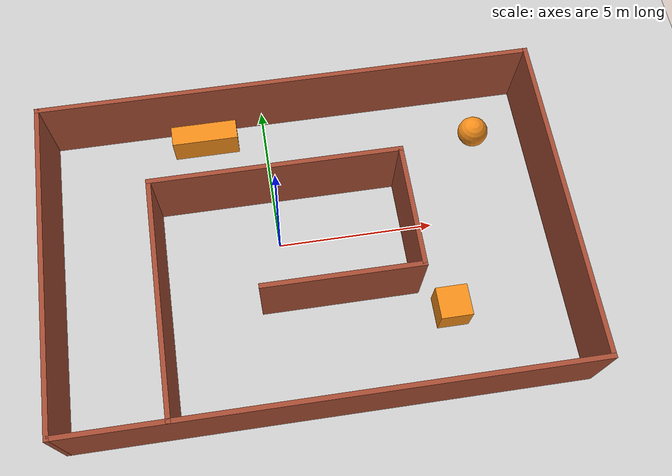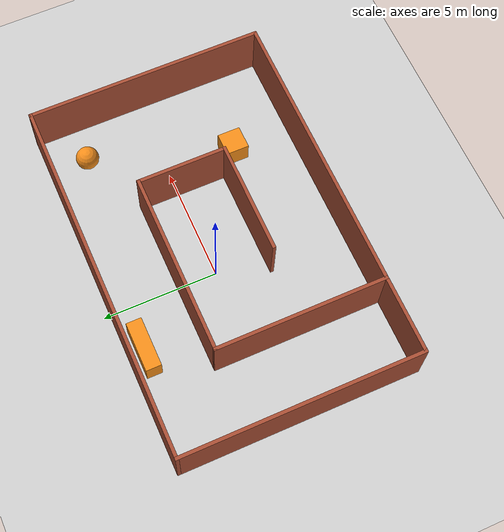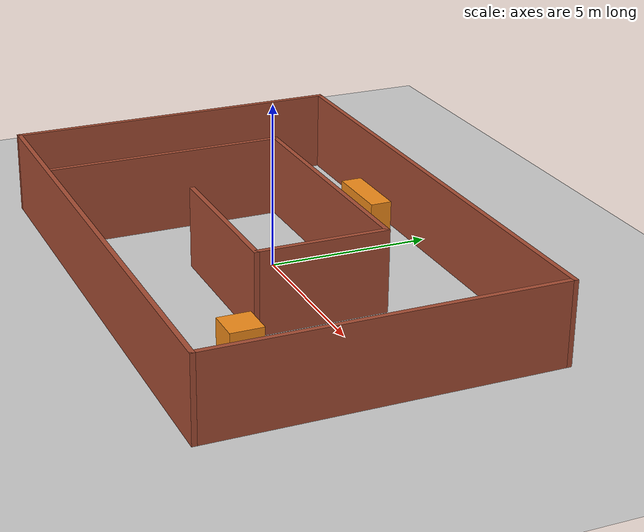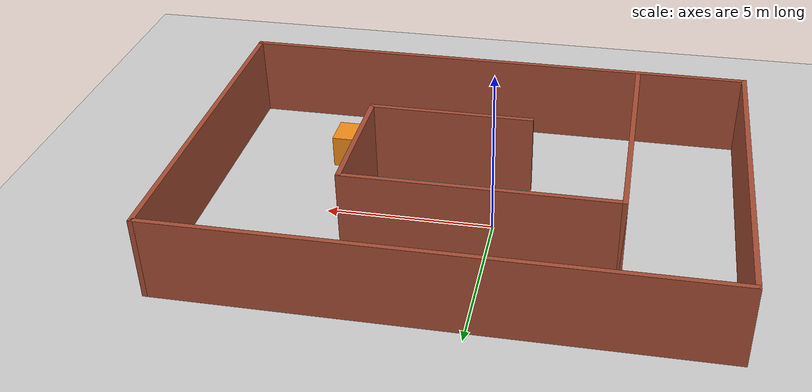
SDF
<sdf version="1.7">
 <world name="default">
  <light name="sun" type="directional">
   <pose>0 0 10 0 -0 0</pose>
   <diffuse>0.8 0.8 0.8 1</diffuse>
   <specular>0.2 0.2 0.2 1</specular>
   <attenuation>
    <range>1000</range>
    <constant>0.9</constant>
    <linear>0.01</linear>
    <quadratic>0.001</quadratic>
   </attenuation>
   <direction>-0.5 0.1 -0.9</direction>
   <spot><inner_angle>0</inner_angle><outer_angle>0</outer_angle><falloff>0</falloff></spot>
  </light>
  <model name="ground_plane">
   <static>1</static>
   <link name="link">
    <collision name="collision">
     <geometry><plane><normal>0 0 1</normal><size>100 100</size></plane></geometry>
     <surface>
      <contact><collide_bitmask>65535</collide_bitmask></contact>
      <friction><ode><mu>100</mu><mu2>50</mu2></ode></friction>
     </surface>
    </collision>
    <visual name="visual">
     <cast_shadows>0</cast_shadows>
     <geometry><plane><normal>0 0 1</normal><size>100 100</size></plane></geometry>
     <material>
      <script><uri>file://media/materials/scripts/gazebo.material</uri><name>Gazebo/Grey</name></script>
     </material>
    </visual>
   </link>
  </model>
  <gravity>0 0 -9.8</gravity>
  <magnetic_field>6e-06 2.3e-05 -4.2e-05</magnetic_field>
  <atmosphere type="adiabatic"/>
  <physics type="ode">
   <max_step_size>0.001</max_step_size>
   <real_time_factor>1</real_time_factor>
   <real_time_update_rate>1000</real_time_update_rate>
  </physics>
  <scene><ambient>0.4 0.4 0.4 1</ambient><background>0.7 0.7 0.7 1</background><shadows>1</shadows></scene>
  <spherical_coordinates>
   <surface_model>EARTH_WGS84</surface_model>
   <latitude_deg>0</latitude_deg>
   <longitude_deg>0</longitude_deg>
   <elevation>0</elevation>
   <heading_deg>0</heading_deg>
  </spherical_coordinates>
  <model name="simple_world">
   <pose>0.83242 -0.51517 0 0 -0 0</pose>
   <link name="Wall_0">
    <collision name="Wall_0_Collision">
     <geometry><box><size>15.9212 0.15 2.5</size></box></geometry>
     <pose>0 0 1.25 0 -0 0</pose>
    </collision>
    <visual name="Wall_0_Visual">
     <pose>0 0 1.25 0 -0 0</pose>
     <geometry><box><size>15.9212 0.15 2.5</size></box></geometry>
     <material>
      <script><uri>file://media/materials/scripts/gazebo.material</uri><name>Gazebo/Bricks</name></script>
      <ambient>1 1 1 1</ambient>
     </material>
     <meta><layer>0</layer></meta>
    </visual>
    <pose>0.03943 -5.175 0 0 -0 3.14159</pose>
   </link>
   <link name="Wall_11">
    <collision name="Wall_11_Collision">
     <geometry><box><size>7.5 0.15 2.5</size></box></geometry>
     <pose>0 0 1.25 0 -0 0</pose>
    </collision>
    <visual name="Wall_11_Visual">
     <pose>0 0 1.25 0 -0 0</pose>
     <geometry><box><size>7.5 0.15 2.5</size></box></geometry>
     <material>
      <script><uri>file://media/materials/scripts/gazebo.material</uri><name>Gazebo/Bricks</name></script>
      <ambient>1 1 1 1</ambient>
     </material>
     <meta><layer>0</layer></meta>
    </visual>
    <pose>-4.61999 -1.49272 0 0 -0 1.5708</pose>
   </link>
   <link name="Wall_12">
    <collision name="Wall_12_Collision">
     <geometry><box><size>8 0.15 2.5</size></box></geometry>
     <pose>0 0 1.25 0 -0 0</pose>
    </collision>
    <visual name="Wall_12_Visual">
     <pose>0 0 1.25 0 -0 0</pose>
     <geometry><box><size>8 0.15 2.5</size></box></geometry>
     <material>
      <script><uri>file://media/materials/scripts/gazebo.material</uri><name>Gazebo/Bricks</name></script>
      <ambient>1 1 1 1</ambient>
     </material>
     <meta><layer>0</layer></meta>
    </visual>
    <pose>-0.694986 2.18228 0 0 -0 0</pose>
   </link>
   <link name="Wall_13">
    <collision name="Wall_13_Collision">
     <geometry><box><size>4 0.15 2.5</size></box></geometry>
     <pose>0 0 1.25 0 -0 0</pose>
    </collision>
    <visual name="Wall_13_Visual">
     <pose>0 0 1.25 0 -0 0</pose>
     <geometry><box><size>4 0.15 2.5</size></box></geometry>
     <material>
      <script><uri>file://media/materials/scripts/gazebo.material</uri><name>Gazebo/Bricks</name></script>
      <ambient>1 1 1 1</ambient>
     </material>
     <meta><layer>0</layer></meta>
    </visual>
    <pose>3.23001 0.257278 0 0 -0 -1.5708</pose>
   </link>
   <link name="Wall_14">
    <collision name="Wall_14_Collision">
     <geometry><box><size>5 0.15 2.5</size></box></geometry>
     <pose>0 0 1.25 0 -0 0</pose>
    </collision>
    <visual name="Wall_14_Visual">
     <pose>0 0 1.25 0 -0 0</pose>
     <geometry><box><size>5 0.15 2.5</size></box></geometry>
     <material>
      <script><uri>file://media/materials/scripts/gazebo.material</uri><name>Gazebo/Bricks</name></script>
      <ambient>1 1 1 1</ambient>
     </material>
     <meta><layer>0</layer></meta>
    </visual>
    <pose>0.805014 -1.66772 0 0 -0 3.14159</pose>
   </link>
   <link name="Wall_7">
    <collision name="Wall_7_Collision">
     <geometry><box><size>10.5 0.15 2.5</size></box></geometry>
     <pose>0 0 1.25 0 -0 0</pose>
    </collision>
    <visual name="Wall_7_Visual">
     <pose>0 0 1.25 0 -0 0</pose>
     <geometry><box><size>10.5 0.15 2.5</size></box></geometry>
     <material>
      <script><uri>file://media/materials/scripts/gazebo.material</uri><name>Gazebo/Bricks</name></script>
      <ambient>1 1 1 1</ambient>
     </material>
     <meta><layer>0</layer></meta>
    </visual>
    <pose>7.92498 -0 0 0 -0 1.5708</pose>
   </link>
   <link name="Wall_8">
    <collision name="Wall_8_Collision">
     <geometry><box><size>16 0.15 2.5</size></box></geometry>
     <pose>0 0 1.25 0 -0 0</pose>
    </collision>
    <visual name="Wall_8_Visual">
     <pose>0 0 1.25 0 -0 0</pose>
     <geometry><box><size>16 0.15 2.5</size></box></geometry>
     <material>
      <script><uri>file://media/materials/scripts/gazebo.material</uri><name>Gazebo/Bricks</name></script>
      <ambient>1 1 1 1</ambient>
     </material>
     <meta><layer>0</layer></meta>
    </visual>
    <pose>-2.1e-05 5.175 0 0 -0 3.14159</pose>
   </link>
   <link name="Wall_9">
    <collision name="Wall_9_Collision">
     <geometry><box><size>10.5 0.15 2.5</size></box></geometry>
     <pose>0 0 1.25 0 -0 0</pose>
    </collision>
    <visual name="Wall_9_Visual">
     <pose>0 0 1.25 0 -0 0</pose>
     <geometry><box><size>10.5 0.15 2.5</size></box></geometry>
     <material>
      <script><uri>file://media/materials/scripts/gazebo.material</uri><name>Gazebo/Bricks</name></script>
      <ambient>1 1 1 1</ambient>
     </material>
     <meta><layer>0</layer></meta>
    </visual>
    <pose>-7.92502 -0 0 0 -0 -1.5708</pose>
   </link>
   <static>1</static>
  </model>
  <model name="unit_sphere">
   <pose>7 3 0.5 0 -0 0</pose>
   <link name="link">
    <inertial>
     <mass>1</mass>
     <inertia><ixx>0.1</ixx><ixy>0</ixy><ixz>0</ixz><iyy>0.1</iyy><iyz>0</iyz><izz>0.1</izz></inertia>
    </inertial>
    <collision name="collision"><geometry><sphere><radius>0.5</radius></sphere></geometry></collision>
    <visual name="visual">
     <geometry><sphere><radius>0.5</radius></sphere></geometry>
     <material>
      <script><name>Gazebo/Orange</name><uri>file://media/materials/scripts/gazebo.material</uri></script>
     </material>
    </visual>
   </link>
  </model>
  <model name="unit_box">
   <pose>5 -3 0.5 0 -0 0</pose>
   <link name="link">
    <inertial>
     <mass>1</mass>
     <inertia>
      <ixx>0.166667</ixx>
      <ixy>0</ixy>
      <ixz>0</ixz>
      <iyy>0.166667</iyy>
      <iyz>0</iyz>
      <izz>0.166667</izz>
     </inertia>
    </inertial>
    <collision name="collision"><geometry><box><size>1 1 1</size></box></geometry></collision>
    <visual name="visual">
     <geometry><box><size>1 1 1</size></box></geometry>
     <material>
      <script><name>Gazebo/Orange</name><uri>file://media/materials/scripts/gazebo.material</uri></script>
     </material>
    </visual>
   </link>
  </model>
  <model name="unit_box_0">
   <pose>-2 4 0.5 0 -0 0</pose>
   <link name="link">
    <inertial>
     <mass>1</mass>
     <inertia>
      <ixx>0.166667</ixx>
      <ixy>0</ixy>
      <ixz>0</ixz>
      <iyy>0.166667</iyy>
      <iyz>0</iyz>
      <izz>0.166667</izz>
     </inertia>
    </inertial>
    <collision name="collision"><geometry><box><size>2.16135 0.669925 1</size></box></geometry></collision>
    <visual name="visual">
     <geometry><box><size>2.16135 0.669925 1</size></box></geometry>
     <material>
      <script><name>Gazebo/Orange</name><uri>file://media/materials/scripts/gazebo.material</uri></script>
     </material>
    </visual>
   </link>
  </model>
 </world>
</sdf>
